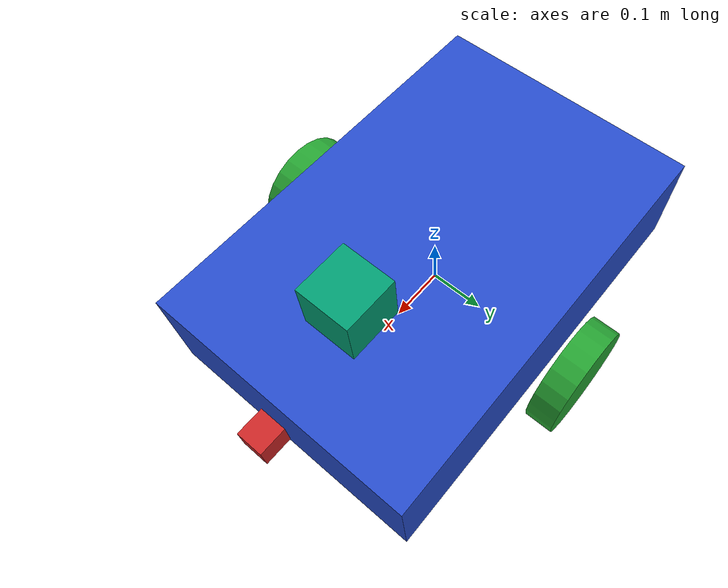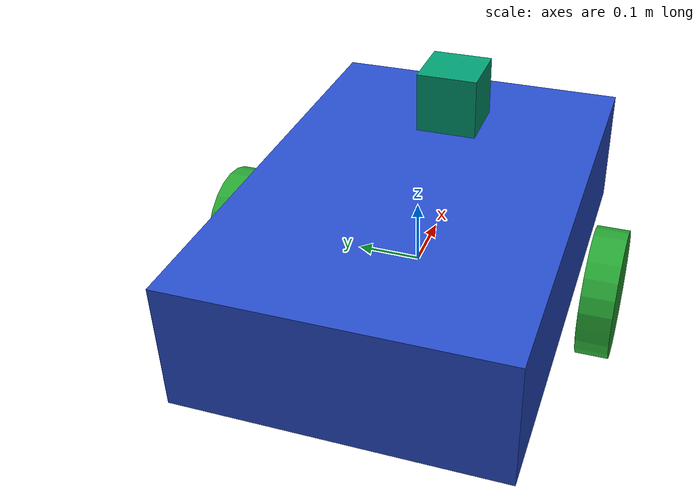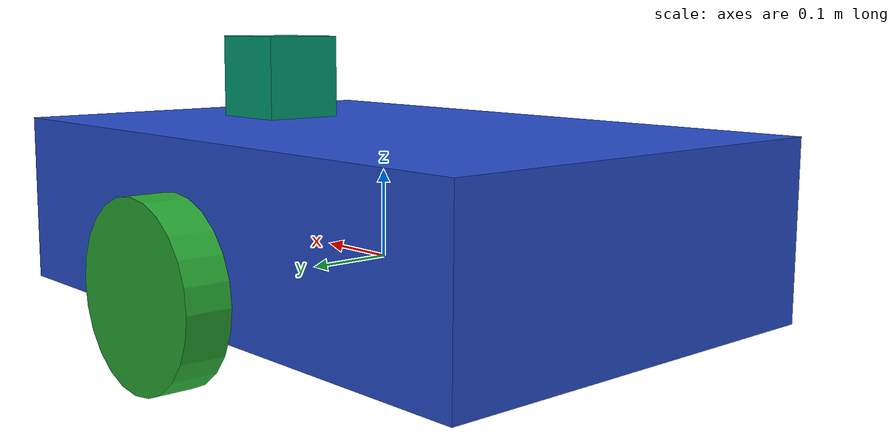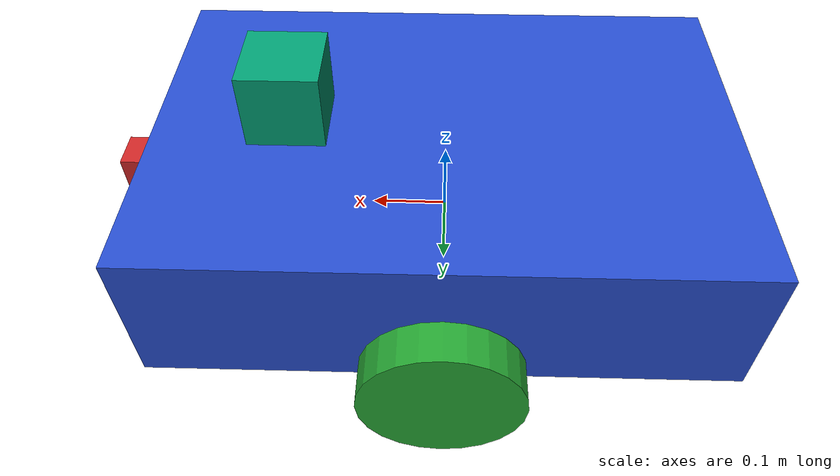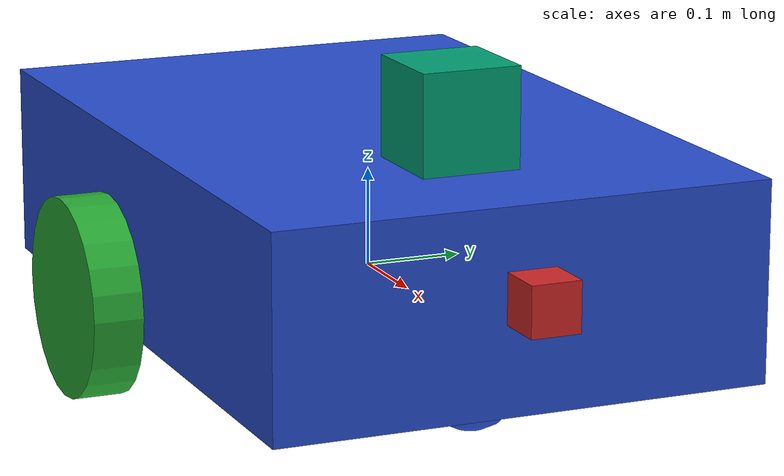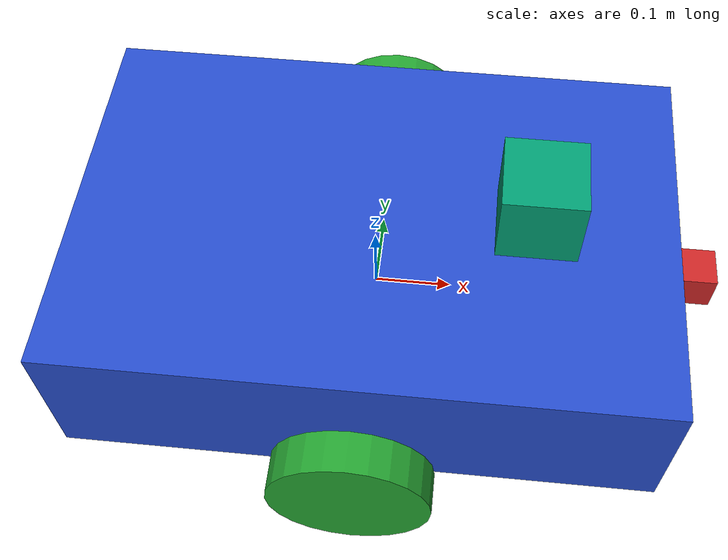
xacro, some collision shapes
<?xml version='1.0'?>

<robot name="tdbotv2" xmlns:xacro="http://www.ros.org/wiki/xacro">

  <xacro:include filename="$(find tdbotv2)/urdf/tdbotv2.gazebo" />

  <xacro:property name="box_width" value="0.5"/>
  <xacro:property name="box_length" value="${box_width*3/2}"/>
  <xacro:property name="box_height" value="0.2"/>

  <xacro:property name="wheel_radius" value="0.1"/>
  <xacro:property name="wheel_length" value="0.05"/>

  <xacro:property name="cameraSize" value="0.05"/>

  <gazebo reference="left_wheel">
    <material>Gazebo/Green</material>
  </gazebo>

  <gazebo reference="right_wheel">
    <material>Gazebo/Green</material>
  </gazebo>

  <gazebo reference="camera">
    <material>Gazebo/Red</material>
  </gazebo>

  <gazebo reference="chassis">
    <material>Gazebo/Blue</material>
  </gazebo>
  <link name="robot_footprint"></link>

  <joint name="robot_footprint_joint" type="fixed">
    <origin xyz="0 0 0" rpy="0 0 0" />
    <parent link="robot_footprint"/>
    <child link="chassis" />
  </joint>

  <joint name="camera_joint" type="fixed">
    <origin xyz="${box_length/2+cameraSize*2/3} 0 ${box_height/3}" rpy="0 0 0" />
    <parent link="chassis"/>
    <child link="camera" />
    <axis xyz="0 1 0"/>
  </joint>

  <joint name="hokuyo_joint" type="fixed">
    <origin xyz="0.2 0 0.2" rpy="0 0 0" />
    <parent link="chassis"/>
    <child link="hokuyo" />
    <axis xyz="0 1 0"/>
  </joint>

  <joint type="continuous" name="left_wheel_hinge">
    <origin xyz="0 0.30 0" rpy="0 0 0" />
    <parent link="chassis"/>
    <child link="left_wheel" />
    <axis xyz="0 1 0" rpy="0 0 0" />
    <limit effort="1000" velocity="100" />
    <dynamics damping="1.0" friction="1.0" />
  </joint>

  <joint type="continuous" name="right_wheel_hinge">
    <origin xyz="0 -0.30 0" rpy="0 0 0" />
    <parent link="chassis"/>
    <child link="right_wheel" />
    <axis xyz="0 1 0" rpy="0 0 0" />
    <limit effort="1000" velocity="100" />
    <dynamics damping="1.0" friction="1.0" />
  </joint>
  <link name="camera">
    <inertial>
      <mass value="0.1"/>
      <origin xyz="0 0 0" rpy="0 0 0"/>
      <inertia
        ixx="1e-6" ixy="0.0" ixz="0.0"
        iyy="1e-6" iyz="0.0"
        izz="1e-6"
      />
    </inertial>

    <collision>
      <origin xyz="0 0 0" rpy="0 0 0"/>
      <geometry>
        <box size="${cameraSize} ${cameraSize} ${cameraSize}"/>
      </geometry>
    </collision>

    <visual>
      <origin xyz="0 0 0" rpy="0 0 0"/>
      <geometry>
        <box size="${cameraSize} ${cameraSize} ${cameraSize}"/>
      </geometry>
    </visual>

  </link>

  <link name="hokuyo">
    <inertial>
      <mass value="1e-5"/>
      <origin xyz="0 0 0" rpy="0 0 0"/>
      <inertia
        ixx="1e-6" ixy="0.0" ixz="0.0"
        iyy="1e-6" iyz="0.0"
        izz="1e-6"
      />
    </inertial>

    <collision>
      <origin xyz="0 0 0" rpy="0 0 0"/>
      <geometry>
        <box size="0.1 0.1 0.1"/>
      </geometry>
    </collision>

    <visual>
      <origin xyz="0 0 0" rpy="0 0 0"/>
      <geometry>
        <mesh filename="package://tdbotv2/meshes/hokuyo.dae"/>
      </geometry>
    </visual>

  </link>

  <link name="left_wheel">
    <inertial>
      <mass value="5"/>
      <origin xyz="0 0 0" rpy="0 1.5707 1.5707"/>
      <inertia
        ixx="0.1" ixy="0.0" ixz="0.0"
        iyy="0.1" iyz="0.0"
        izz="0.1"
      />
    </inertial>

    <collision>
      <origin xyz="0 0 0" rpy="0 1.5707 1.5707"/>
      <geometry>
        <cylinder radius="${wheel_radius}" length="${wheel_length}"/>
      </geometry>
    </collision>

    <visual>
      <origin xyz="0 0 0" rpy="0 1.5707 1.5707"/>
      <geometry>
        <cylinder radius="${wheel_radius}" length="${wheel_length}"/>
      </geometry>
    </visual>

  </link>

  <link name="right_wheel">
    <inertial>
      <mass value="5"/>
      <origin xyz="0 0 0" rpy="0 1.5707 1.5707"/>
      <inertia
        ixx="0.1" ixy="0.0" ixz="0.0"
        iyy="0.1" iyz="0.0"
        izz="0.1"
      />
    </inertial>

    <collision>
      <origin xyz="0 0 0" rpy="0 1.5707 1.5707"/>
      <geometry>
        <cylinder radius="${wheel_radius}" length="${wheel_length}"/>
      </geometry>
    </collision>

    <visual>
      <origin xyz="0 0 0" rpy="0 1.5707 1.5707"/>
      <geometry>
        <cylinder radius="${wheel_radius}" length="${wheel_length}"/>
      </geometry>
    </visual>

  </link>

  <link name='chassis'>
    <pose>0 0 0.1 0 0 0</pose>

    <inertial>
      <mass value="15.0"/>
      <origin xyz="0.0 0 0.1" rpy=" 0 0 0"/>
      <inertia
          ixx="0.1" ixy="0" ixz="0"
          iyy="0.1" iyz="0"
          izz="0.1"
      />
    </inertial>

    <collision name='collision'>
      <origin xyz="0 0 0.05" rpy=" 0 0 0"/>
      <geometry>
        <box size="${box_length} ${box_width} ${box_height}"/>
      </geometry>
    </collision>

    <visual name='chassis_visual'>
      <origin xyz="0 0 0.05" rpy=" 0 0 0"/>
      <geometry>
        <box size="${box_length} ${box_width} ${box_height}"/>
      </geometry>
    </visual>

    <collision name='front_caster_collision'>
      <origin xyz="${box_length/3} 0 -0.05" rpy=" 0 0 0"/>
      <geometry>
        <sphere radius="0.0499"/>
      </geometry>
    </collision>

    <visual name='front_caster_visual'>
      <origin xyz="${box_length/3} 0 -0.05" rpy=" 0 0 0"/>
      <geometry>
        <sphere radius="0.05"/>
      </geometry>
    </visual>

  </link>

</robot>
